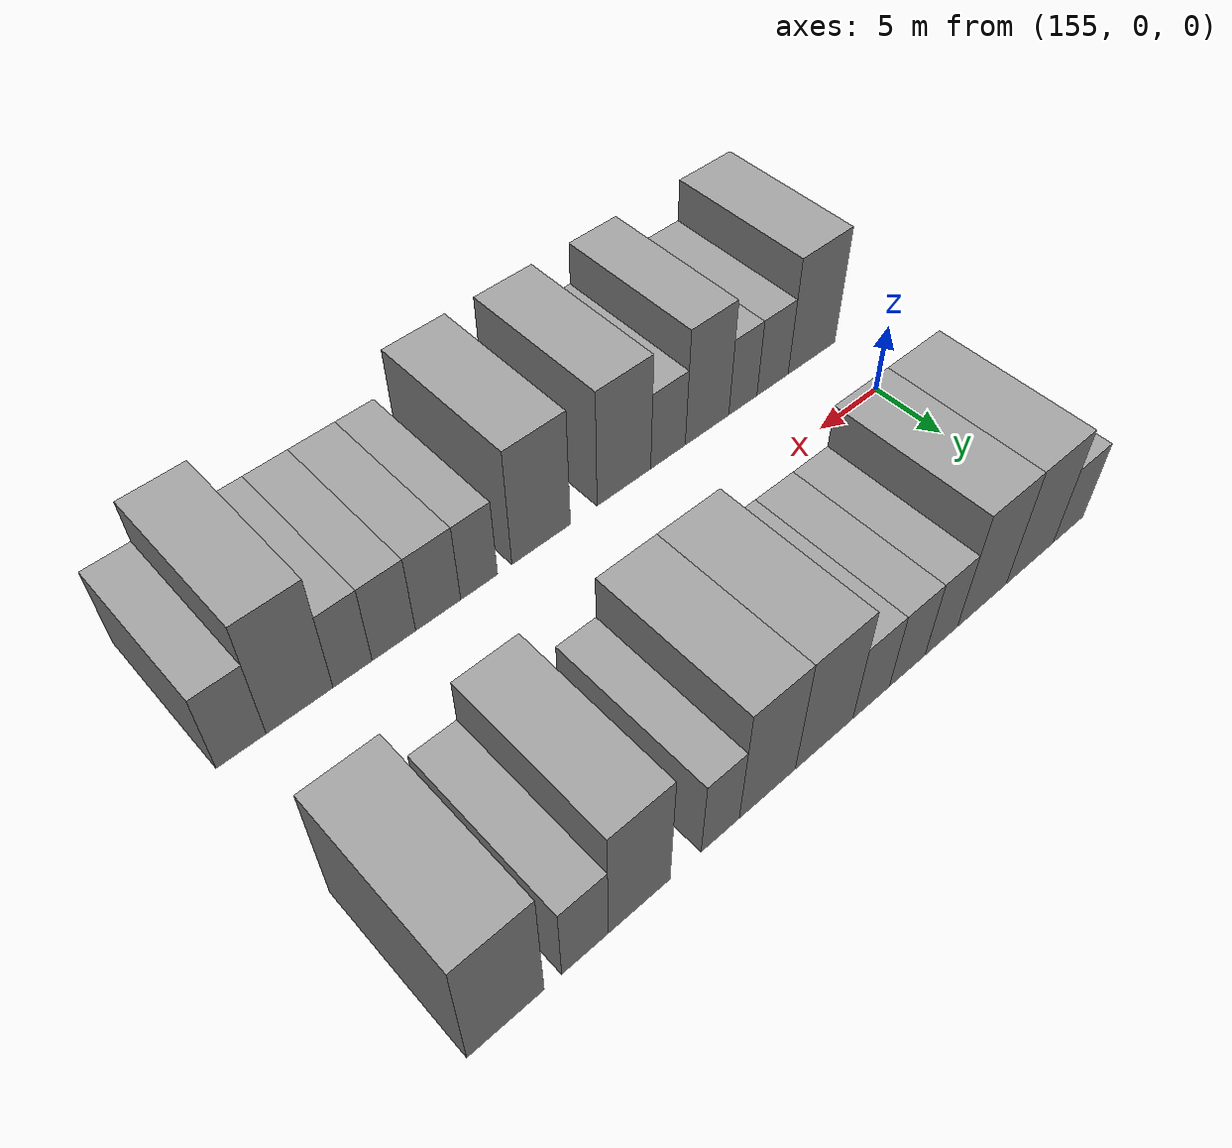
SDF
<sdf version="1.6">
 <world name="default">
  <model name="building_38">
   <static>1</static>
   <pose>155.6980 9.5000 0 0.000000 0.000000 1.570796</pose>
   <link name="link">
    <pose>0 0 3.00 0 0 0</pose>
    <collision name="collision"><geometry><box><size>10.0000 2.7979 6.0000</size></box></geometry></collision>
    <visual name="visual">
     <cast_shadows>0</cast_shadows>
     <geometry><box><size>10.0000 2.7979 6.0000</size></box></geometry>
     <material>
      <script>
       <uri>model://grey_wall/materials/scripts</uri>
       <uri>model://grey_wall/materials/textures</uri>
       <name>vrc/grey_wall</name>
      </script>
     </material>
    </visual>
   </link>
  </model>
  <model name="building_39">
   <static>1</static>
   <pose>159.2119 9.5000 0 0.000000 0.000000 1.570796</pose>
   <link name="link">
    <pose>0 0 4.50 0 0 0</pose>
    <collision name="collision"><geometry><box><size>10.0000 4.2299 9.0000</size></box></geometry></collision>
    <visual name="visual">
     <cast_shadows>0</cast_shadows>
     <geometry><box><size>10.0000 4.2299 9.0000</size></box></geometry>
     <material>
      <script>
       <uri>model://grey_wall/materials/scripts</uri>
       <uri>model://grey_wall/materials/textures</uri>
       <name>vrc/grey_wall</name>
      </script>
     </material>
    </visual>
   </link>
  </model>
  <model name="building_40">
   <static>1</static>
   <pose>163.4170 9.5000 0 0.000000 0.000000 1.570796</pose>
   <link name="link">
    <pose>0 0 4.50 0 0 0</pose>
    <collision name="collision"><geometry><box><size>10.0000 4.1805 9.0000</size></box></geometry></collision>
    <visual name="visual">
     <cast_shadows>0</cast_shadows>
     <geometry><box><size>10.0000 4.1805 9.0000</size></box></geometry>
     <material>
      <script>
       <uri>model://grey_wall/materials/scripts</uri>
       <uri>model://grey_wall/materials/textures</uri>
       <name>vrc/grey_wall</name>
      </script>
     </material>
    </visual>
   </link>
  </model>
  <model name="building_41">
   <static>1</static>
   <pose>166.8425 9.5000 0 0.000000 0.000000 1.570796</pose>
   <link name="link">
    <pose>0 0 3.00 0 0 0</pose>
    <collision name="collision"><geometry><box><size>10.0000 2.6705 6.0000</size></box></geometry></collision>
    <visual name="visual">
     <cast_shadows>0</cast_shadows>
     <geometry><box><size>10.0000 2.6705 6.0000</size></box></geometry>
     <material>
      <script>
       <uri>model://grey_wall/materials/scripts</uri>
       <uri>model://grey_wall/materials/textures</uri>
       <name>vrc/grey_wall</name>
      </script>
     </material>
    </visual>
   </link>
  </model>
  <model name="building_42">
   <static>1</static>
   <pose>169.5877 9.5000 0 0.000000 0.000000 1.570796</pose>
   <link name="link">
    <pose>0 0 3.00 0 0 0</pose>
    <collision name="collision"><geometry><box><size>10.0000 2.8198 6.0000</size></box></geometry></collision>
    <visual name="visual">
     <cast_shadows>0</cast_shadows>
     <geometry><box><size>10.0000 2.8198 6.0000</size></box></geometry>
     <material>
      <script>
       <uri>model://grey_wall/materials/scripts</uri>
       <uri>model://grey_wall/materials/textures</uri>
       <name>vrc/grey_wall</name>
      </script>
     </material>
    </visual>
   </link>
  </model>
  <model name="building_43">
   <static>1</static>
   <pose>172.3979 9.5000 0 0.000000 0.000000 1.570796</pose>
   <link name="link">
    <pose>0 0 3.00 0 0 0</pose>
    <collision name="collision"><geometry><box><size>10.0000 2.8007 6.0000</size></box></geometry></collision>
    <visual name="visual">
     <cast_shadows>0</cast_shadows>
     <geometry><box><size>10.0000 2.8007 6.0000</size></box></geometry>
     <material>
      <script>
       <uri>model://grey_wall/materials/scripts</uri>
       <uri>model://grey_wall/materials/textures</uri>
       <name>vrc/grey_wall</name>
      </script>
     </material>
    </visual>
   </link>
  </model>
  <model name="building_44">
   <static>1</static>
   <pose>175.9020 9.5000 0 0.000000 0.000000 1.570796</pose>
   <link name="link">
    <pose>0 0 4.50 0 0 0</pose>
    <collision name="collision"><geometry><box><size>10.0000 4.2075 9.0000</size></box></geometry></collision>
    <visual name="visual">
     <cast_shadows>0</cast_shadows>
     <geometry><box><size>10.0000 4.2075 9.0000</size></box></geometry>
     <material>
      <script>
       <uri>model://grey_wall/materials/scripts</uri>
       <uri>model://grey_wall/materials/textures</uri>
       <name>vrc/grey_wall</name>
      </script>
     </material>
    </visual>
   </link>
  </model>
  <model name="building_45">
   <static>1</static>
   <pose>179.9502 9.5000 0 0.000000 0.000000 1.570796</pose>
   <link name="link">
    <pose>0 0 4.50 0 0 0</pose>
    <collision name="collision"><geometry><box><size>10.0000 3.8887 9.0000</size></box></geometry></collision>
    <visual name="visual">
     <cast_shadows>0</cast_shadows>
     <geometry><box><size>10.0000 3.8887 9.0000</size></box></geometry>
     <material>
      <script>
       <uri>model://grey_wall/materials/scripts</uri>
       <uri>model://grey_wall/materials/textures</uri>
       <name>vrc/grey_wall</name>
      </script>
     </material>
    </visual>
   </link>
  </model>
  <model name="building_46">
   <static>1</static>
   <pose>183.1584 9.5000 0 0.000000 0.000000 1.570796</pose>
   <link name="link">
    <pose>0 0 3.00 0 0 0</pose>
    <collision name="collision"><geometry><box><size>10.0000 2.5278 6.0000</size></box></geometry></collision>
    <visual name="visual">
     <cast_shadows>0</cast_shadows>
     <geometry><box><size>10.0000 2.5278 6.0000</size></box></geometry>
     <material>
      <script>
       <uri>model://grey_wall/materials/scripts</uri>
       <uri>model://grey_wall/materials/textures</uri>
       <name>vrc/grey_wall</name>
      </script>
     </material>
    </visual>
   </link>
  </model>
  <model name="building_47">
   <static>1</static>
   <pose>188.3352 9.5000 0 0.000000 0.000000 1.570796</pose>
   <link name="link">
    <pose>0 0 4.50 0 0 0</pose>
    <collision name="collision"><geometry><box><size>10.0000 3.8258 9.0000</size></box></geometry></collision>
    <visual name="visual">
     <cast_shadows>0</cast_shadows>
     <geometry><box><size>10.0000 3.8258 9.0000</size></box></geometry>
     <material>
      <script>
       <uri>model://grey_wall/materials/scripts</uri>
       <uri>model://grey_wall/materials/textures</uri>
       <name>vrc/grey_wall</name>
      </script>
     </material>
    </visual>
   </link>
  </model>
  <model name="building_48">
   <static>1</static>
   <pose>191.6173 9.5000 0 0.000000 0.000000 1.570796</pose>
   <link name="link">
    <pose>0 0 3.00 0 0 0</pose>
    <collision name="collision"><geometry><box><size>10.0000 2.7383 6.0000</size></box></geometry></collision>
    <visual name="visual">
     <cast_shadows>0</cast_shadows>
     <geometry><box><size>10.0000 2.7383 6.0000</size></box></geometry>
     <material>
      <script>
       <uri>model://grey_wall/materials/scripts</uri>
       <uri>model://grey_wall/materials/textures</uri>
       <name>vrc/grey_wall</name>
      </script>
     </material>
    </visual>
   </link>
  </model>
  <model name="building_49">
   <static>1</static>
   <pose>196.1230 9.5000 0 0.000000 0.000000 1.570796</pose>
   <link name="link">
    <pose>0 0 4.50 0 0 0</pose>
    <collision name="collision"><geometry><box><size>10.0000 4.2729 9.0000</size></box></geometry></collision>
    <visual name="visual">
     <cast_shadows>0</cast_shadows>
     <geometry><box><size>10.0000 4.2729 9.0000</size></box></geometry>
     <material>
      <script>
       <uri>model://grey_wall/materials/scripts</uri>
       <uri>model://grey_wall/materials/textures</uri>
       <name>vrc/grey_wall</name>
      </script>
     </material>
    </visual>
   </link>
  </model>
  <model name="building_86">
   <static>1</static>
   <pose>155.8796 -9.5000 0 0.000000 0.000000 1.570796</pose>
   <link name="link">
    <pose>0 0 4.50 0 0 0</pose>
    <collision name="collision"><geometry><box><size>10.0000 4.3014 9.0000</size></box></geometry></collision>
    <visual name="visual">
     <cast_shadows>0</cast_shadows>
     <geometry><box><size>10.0000 4.3014 9.0000</size></box></geometry>
     <material>
      <script>
       <uri>model://grey_wall/materials/scripts</uri>
       <uri>model://grey_wall/materials/textures</uri>
       <name>vrc/grey_wall</name>
      </script>
     </material>
    </visual>
   </link>
  </model>
  <model name="building_87">
   <static>1</static>
   <pose>159.4169 -9.5000 0 0.000000 0.000000 1.570796</pose>
   <link name="link">
    <pose>0 0 3.00 0 0 0</pose>
    <collision name="collision"><geometry><box><size>10.0000 2.7732 6.0000</size></box></geometry></collision>
    <visual name="visual">
     <cast_shadows>0</cast_shadows>
     <geometry><box><size>10.0000 2.7732 6.0000</size></box></geometry>
     <material>
      <script>
       <uri>model://grey_wall/materials/scripts</uri>
       <uri>model://grey_wall/materials/textures</uri>
       <name>vrc/grey_wall</name>
      </script>
     </material>
    </visual>
   </link>
  </model>
  <model name="building_88">
   <static>1</static>
   <pose>162.0172 -9.5000 0 0.000000 0.000000 1.570796</pose>
   <link name="link">
    <pose>0 0 3.00 0 0 0</pose>
    <collision name="collision"><geometry><box><size>10.0000 2.4274 6.0000</size></box></geometry></collision>
    <visual name="visual">
     <cast_shadows>0</cast_shadows>
     <geometry><box><size>10.0000 2.4274 6.0000</size></box></geometry>
     <material>
      <script>
       <uri>model://grey_wall/materials/scripts</uri>
       <uri>model://grey_wall/materials/textures</uri>
       <name>vrc/grey_wall</name>
      </script>
     </material>
    </visual>
   </link>
  </model>
  <model name="building_89">
   <static>1</static>
   <pose>165.0512 -9.5000 0 0.000000 0.000000 1.570796</pose>
   <link name="link">
    <pose>0 0 4.50 0 0 0</pose>
    <collision name="collision"><geometry><box><size>10.0000 3.6405 9.0000</size></box></geometry></collision>
    <visual name="visual">
     <cast_shadows>0</cast_shadows>
     <geometry><box><size>10.0000 3.6405 9.0000</size></box></geometry>
     <material>
      <script>
       <uri>model://grey_wall/materials/scripts</uri>
       <uri>model://grey_wall/materials/textures</uri>
       <name>vrc/grey_wall</name>
      </script>
     </material>
    </visual>
   </link>
  </model>
  <model name="building_90">
   <static>1</static>
   <pose>168.2660 -9.5000 0 0.000000 0.000000 1.570796</pose>
   <link name="link">
    <pose>0 0 3.00 0 0 0</pose>
    <collision name="collision"><geometry><box><size>10.0000 2.7891 6.0000</size></box></geometry></collision>
    <visual name="visual">
     <cast_shadows>0</cast_shadows>
     <geometry><box><size>10.0000 2.7891 6.0000</size></box></geometry>
     <material>
      <script>
       <uri>model://grey_wall/materials/scripts</uri>
       <uri>model://grey_wall/materials/textures</uri>
       <name>vrc/grey_wall</name>
      </script>
     </material>
    </visual>
   </link>
  </model>
  <model name="building_91">
   <static>1</static>
   <pose>171.7435 -9.5000 0 0.000000 0.000000 1.570796</pose>
   <link name="link">
    <pose>0 0 4.50 0 0 0</pose>
    <collision name="collision"><geometry><box><size>10.0000 4.1657 9.0000</size></box></geometry></collision>
    <visual name="visual">
     <cast_shadows>0</cast_shadows>
     <geometry><box><size>10.0000 4.1657 9.0000</size></box></geometry>
     <material>
      <script>
       <uri>model://grey_wall/materials/scripts</uri>
       <uri>model://grey_wall/materials/textures</uri>
       <name>vrc/grey_wall</name>
      </script>
     </material>
    </visual>
   </link>
  </model>
  <model name="building_92">
   <static>1</static>
   <pose>177.9454 -9.5000 0 0.000000 0.000000 1.570796</pose>
   <link name="link">
    <pose>0 0 4.50 0 0 0</pose>
    <collision name="collision"><geometry><box><size>10.0000 4.2381 9.0000</size></box></geometry></collision>
    <visual name="visual">
     <cast_shadows>0</cast_shadows>
     <geometry><box><size>10.0000 4.2381 9.0000</size></box></geometry>
     <material>
      <script>
       <uri>model://grey_wall/materials/scripts</uri>
       <uri>model://grey_wall/materials/textures</uri>
       <name>vrc/grey_wall</name>
      </script>
     </material>
    </visual>
   </link>
  </model>
  <model name="building_93">
   <static>1</static>
   <pose>182.3288 -9.5000 0 0.000000 0.000000 1.570796</pose>
   <link name="link">
    <pose>0 0 3.00 0 0 0</pose>
    <collision name="collision"><geometry><box><size>10.0000 2.5287 6.0000</size></box></geometry></collision>
    <visual name="visual">
     <cast_shadows>0</cast_shadows>
     <geometry><box><size>10.0000 2.5287 6.0000</size></box></geometry>
     <material>
      <script>
       <uri>model://grey_wall/materials/scripts</uri>
       <uri>model://grey_wall/materials/textures</uri>
       <name>vrc/grey_wall</name>
      </script>
     </material>
    </visual>
   </link>
  </model>
  <model name="building_94">
   <static>1</static>
   <pose>185.0925 -9.5000 0 0.000000 0.000000 1.570796</pose>
   <link name="link">
    <pose>0 0 3.00 0 0 0</pose>
    <collision name="collision"><geometry><box><size>10.0000 2.9987 6.0000</size></box></geometry></collision>
    <visual name="visual">
     <cast_shadows>0</cast_shadows>
     <geometry><box><size>10.0000 2.9987 6.0000</size></box></geometry>
     <material>
      <script>
       <uri>model://grey_wall/materials/scripts</uri>
       <uri>model://grey_wall/materials/textures</uri>
       <name>vrc/grey_wall</name>
      </script>
     </material>
    </visual>
   </link>
  </model>
  <model name="building_95">
   <static>1</static>
   <pose>187.9871 -9.5000 0 0.000000 0.000000 1.570796</pose>
   <link name="link">
    <pose>0 0 3.00 0 0 0</pose>
    <collision name="collision"><geometry><box><size>10.0000 2.7905 6.0000</size></box></geometry></collision>
    <visual name="visual">
     <cast_shadows>0</cast_shadows>
     <geometry><box><size>10.0000 2.7905 6.0000</size></box></geometry>
     <material>
      <script>
       <uri>model://grey_wall/materials/scripts</uri>
       <uri>model://grey_wall/materials/textures</uri>
       <name>vrc/grey_wall</name>
      </script>
     </material>
    </visual>
   </link>
  </model>
  <model name="building_96">
   <static>1</static>
   <pose>190.5952 -9.5000 0 0.000000 0.000000 1.570796</pose>
   <link name="link">
    <pose>0 0 3.00 0 0 0</pose>
    <collision name="collision"><geometry><box><size>10.0000 2.4257 6.0000</size></box></geometry></collision>
    <visual name="visual">
     <cast_shadows>0</cast_shadows>
     <geometry><box><size>10.0000 2.4257 6.0000</size></box></geometry>
     <material>
      <script>
       <uri>model://grey_wall/materials/scripts</uri>
       <uri>model://grey_wall/materials/textures</uri>
       <name>vrc/grey_wall</name>
      </script>
     </material>
    </visual>
   </link>
  </model>
  <model name="building_97">
   <static>1</static>
   <pose>193.8033 -9.5000 0 0.000000 0.000000 1.570796</pose>
   <link name="link">
    <pose>0 0 4.50 0 0 0</pose>
    <collision name="collision"><geometry><box><size>10.0000 3.9906 9.0000</size></box></geometry></collision>
    <visual name="visual">
     <cast_shadows>0</cast_shadows>
     <geometry><box><size>10.0000 3.9906 9.0000</size></box></geometry>
     <material>
      <script>
       <uri>model://grey_wall/materials/scripts</uri>
       <uri>model://grey_wall/materials/textures</uri>
       <name>vrc/grey_wall</name>
      </script>
     </material>
    </visual>
   </link>
  </model>
  <model name="building_98">
   <static>1</static>
   <pose>197.2305 -9.5000 0 0.000000 0.000000 1.570796</pose>
   <link name="link">
    <pose>0 0 3.00 0 0 0</pose>
    <collision name="collision"><geometry><box><size>10.0000 2.8636 6.0000</size></box></geometry></collision>
    <visual name="visual">
     <cast_shadows>0</cast_shadows>
     <geometry><box><size>10.0000 2.8636 6.0000</size></box></geometry>
     <material>
      <script>
       <uri>model://grey_wall/materials/scripts</uri>
       <uri>model://grey_wall/materials/textures</uri>
       <name>vrc/grey_wall</name>
      </script>
     </material>
    </visual>
   </link>
  </model>
 </world>
</sdf>
